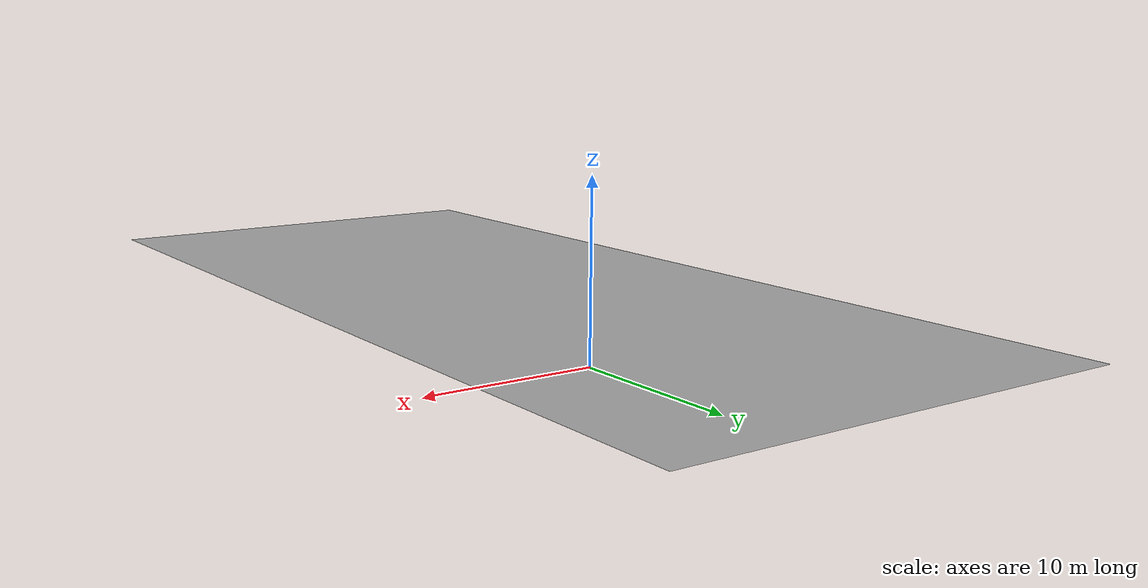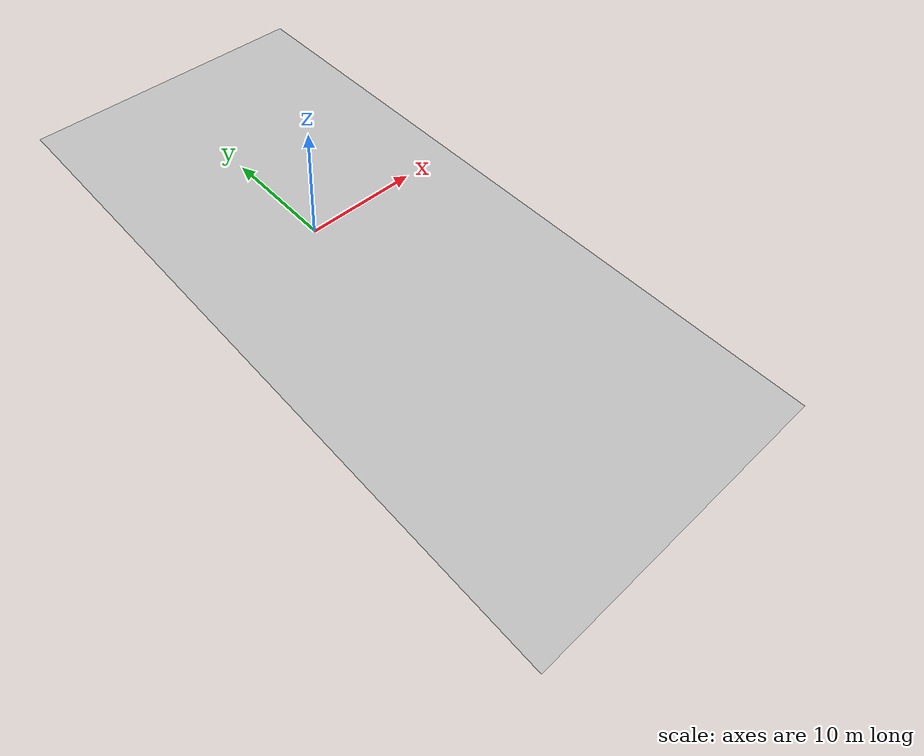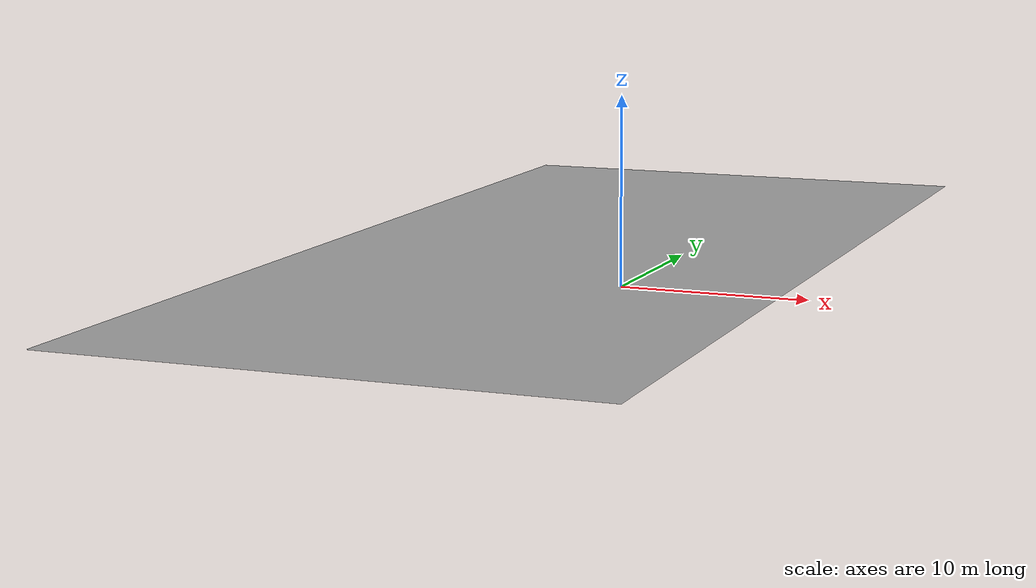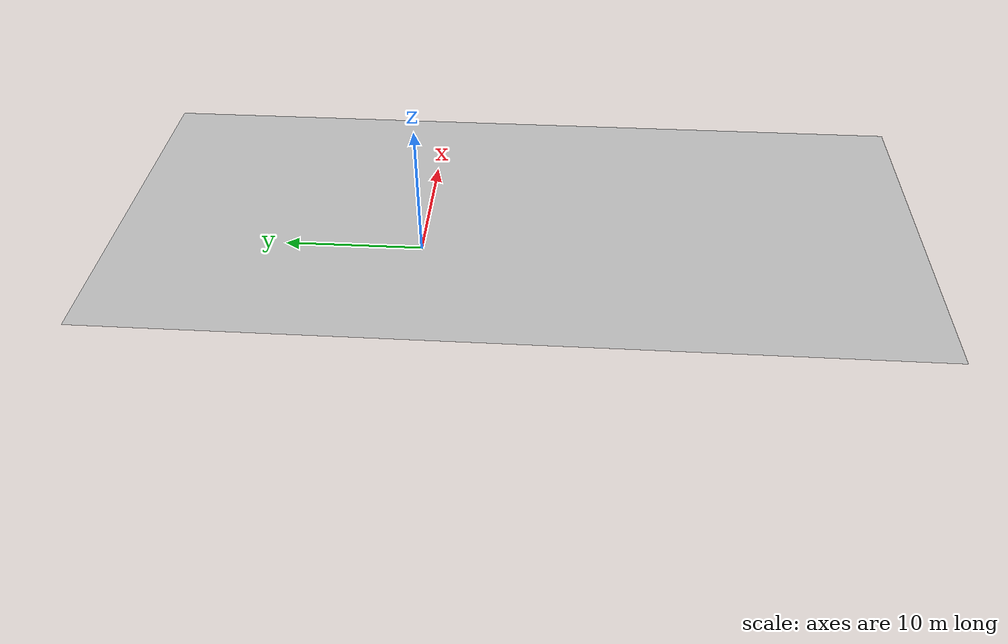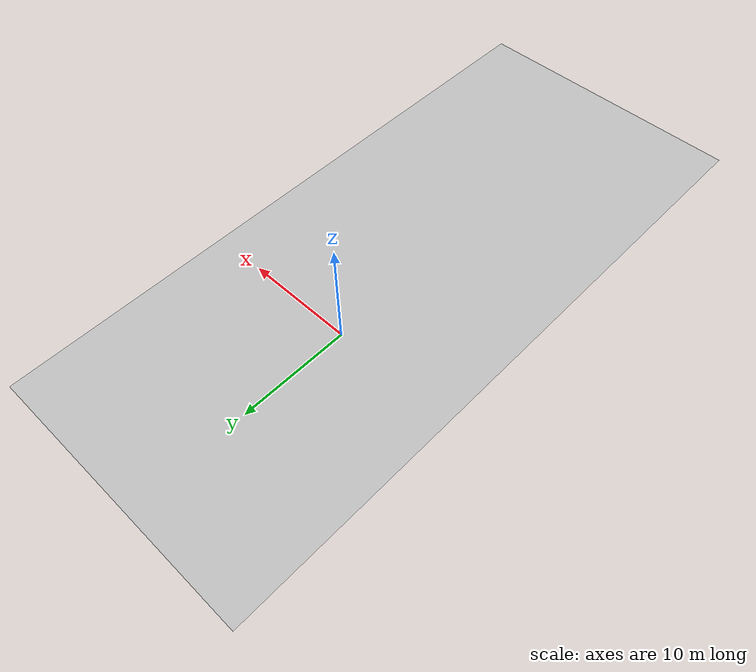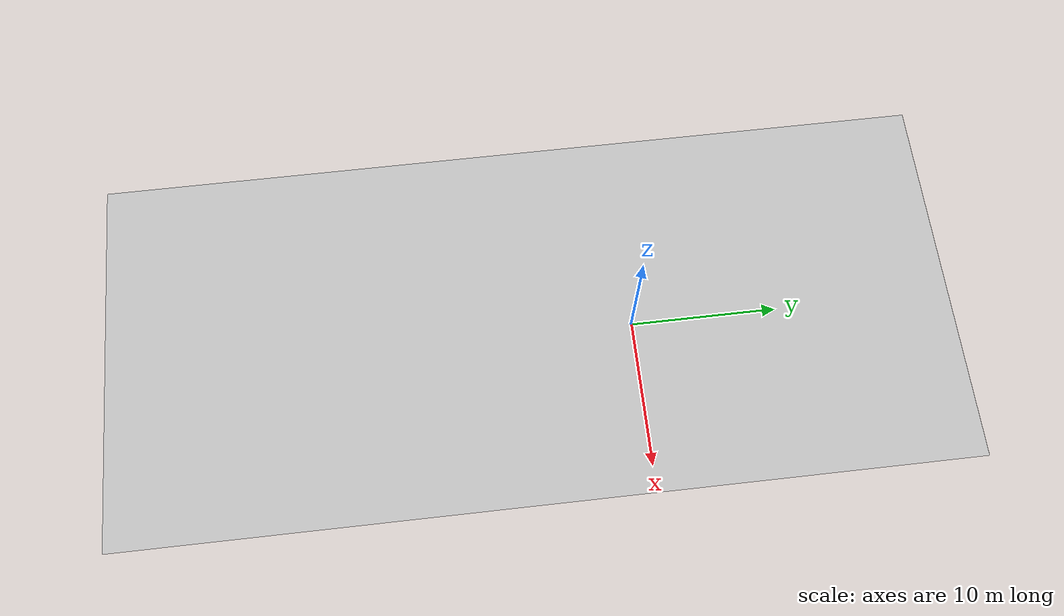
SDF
<?xml version="1.0" ?>
<sdf version="1.6">
  <model name="aws_robomaker_hospital_floor_02_ceiling">
    <link name="link">
      <visual name="visual">
        <geometry>
          <mesh>
            <uri>model://aws_robomaker_hospital_floor_02_ceiling/meshes/aws_robomaker_hospital_floor_02_ceiling_visual.dae</uri>
          </mesh>
        </geometry>
      </visual>
      <collision name="collision">
        <geometry>
          <mesh>
            <uri>model://aws_robomaker_hospital_floor_02_ceiling/meshes/aws_robomaker_hospital_floor_02_ceiling_collision.dae</uri>
          </mesh>
        </geometry>
      </collision>
    </link>
    <static>1</static>
  </model>
</sdf>
